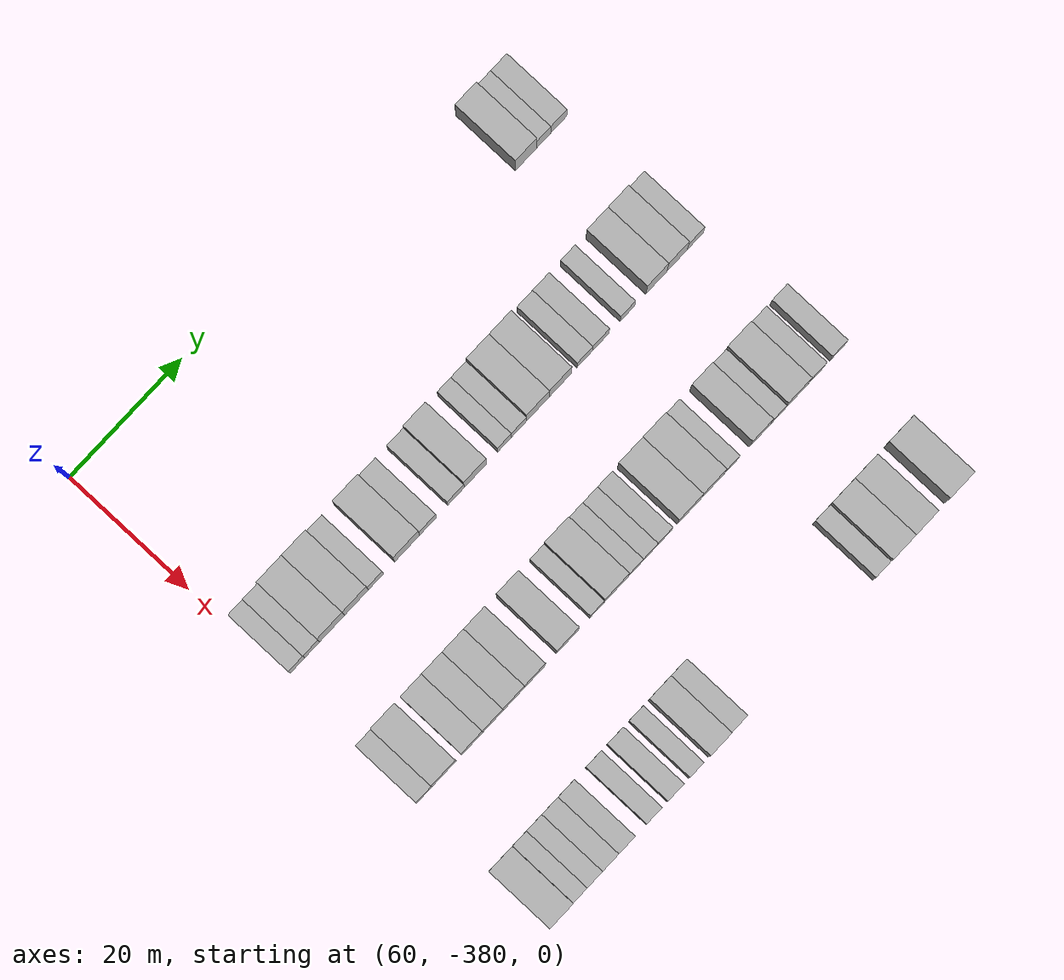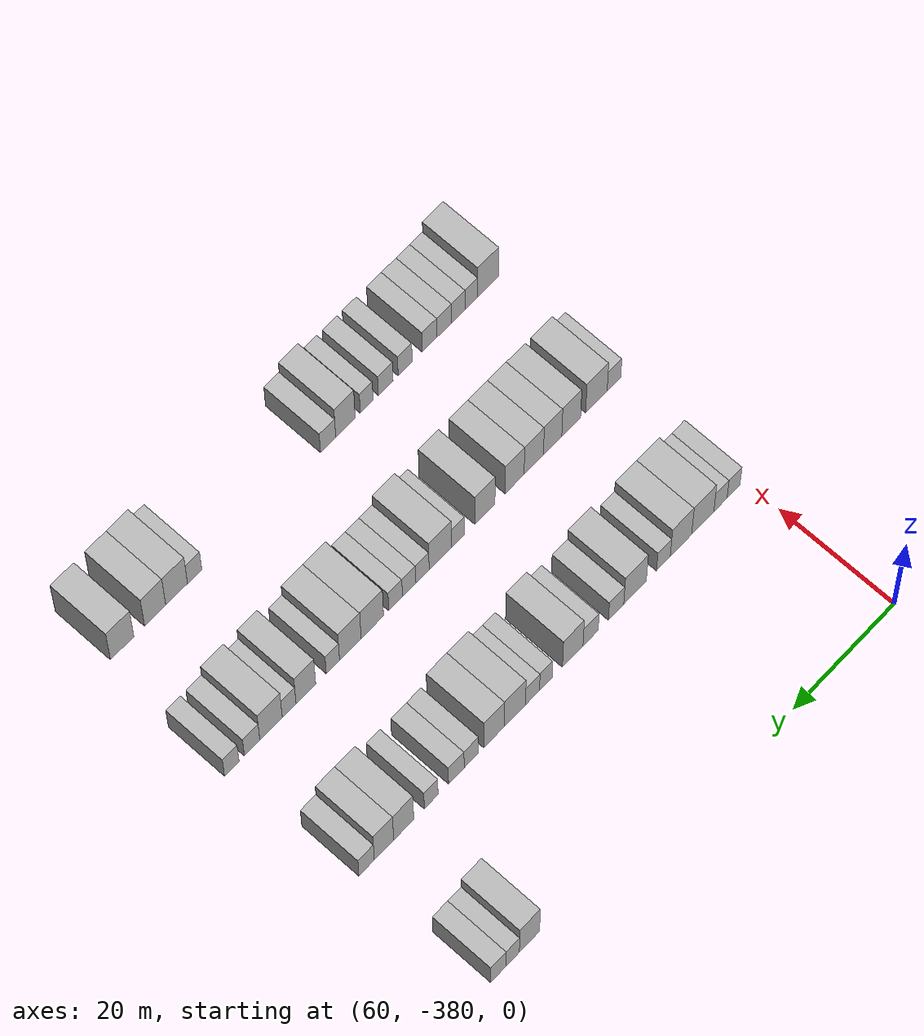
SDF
<sdf version="1.6">
 <world name="default">
  <model name="building_392">
   <static>1</static>
   <pose>69.0000 -313.5269 0 0.000000 0.000000 0.000000</pose>
   <link name="link">
    <pose>0 0 4.50 0 0 0</pose>
    <collision name="collision"><geometry><box><size>10.0000 3.8138 9.0000</size></box></geometry></collision>
    <visual name="visual">
     <cast_shadows>0</cast_shadows>
     <geometry><box><size>10.0000 3.8138 9.0000</size></box></geometry>
     <material>
      <script>
       <uri>model://HANNAS_wall/materials/scripts</uri>
       <uri>model://HANNAS_wall/materials/textures</uri>
       <name>vrc/HANNAS_wall</name>
      </script>
     </material>
    </visual>
   </link>
  </model>
  <model name="building_393">
   <static>1</static>
   <pose>69.0000 -310.3730 0 0.000000 0.000000 0.000000</pose>
   <link name="link">
    <pose>0 0 3.00 0 0 0</pose>
    <collision name="collision"><geometry><box><size>10.0000 2.4939 6.0000</size></box></geometry></collision>
    <visual name="visual">
     <cast_shadows>0</cast_shadows>
     <geometry><box><size>10.0000 2.4939 6.0000</size></box></geometry>
     <material>
      <script>
       <uri>model://HANNAS_wall/materials/scripts</uri>
       <uri>model://HANNAS_wall/materials/textures</uri>
       <name>vrc/HANNAS_wall</name>
      </script>
     </material>
    </visual>
   </link>
  </model>
  <model name="building_394">
   <static>1</static>
   <pose>69.0000 -307.6803 0 0.000000 0.000000 0.000000</pose>
   <link name="link">
    <pose>0 0 3.00 0 0 0</pose>
    <collision name="collision"><geometry><box><size>10.0000 2.8915 6.0000</size></box></geometry></collision>
    <visual name="visual">
     <cast_shadows>0</cast_shadows>
     <geometry><box><size>10.0000 2.8915 6.0000</size></box></geometry>
     <material>
      <script>
       <uri>model://HANNAS_wall/materials/scripts</uri>
       <uri>model://HANNAS_wall/materials/textures</uri>
       <name>vrc/HANNAS_wall</name>
      </script>
     </material>
    </visual>
   </link>
  </model>
  <model name="building_568">
   <static>1</static>
   <pose>91.0000 -377.7199 0 0.000000 0.000000 0.000000</pose>
   <link name="link">
    <pose>0 0 3.00 0 0 0</pose>
    <collision name="collision"><geometry><box><size>10.0000 2.5602 6.0000</size></box></geometry></collision>
    <visual name="visual">
     <cast_shadows>0</cast_shadows>
     <geometry><box><size>10.0000 2.5602 6.0000</size></box></geometry>
     <material>
      <script>
       <uri>model://HANNAS_wall/materials/scripts</uri>
       <uri>model://HANNAS_wall/materials/textures</uri>
       <name>vrc/HANNAS_wall</name>
      </script>
     </material>
    </visual>
   </link>
  </model>
  <model name="building_569">
   <static>1</static>
   <pose>91.0000 -375.1196 0 0.000000 0.000000 0.000000</pose>
   <link name="link">
    <pose>0 0 3.00 0 0 0</pose>
    <collision name="collision"><geometry><box><size>10.0000 2.6404 6.0000</size></box></geometry></collision>
    <visual name="visual">
     <cast_shadows>0</cast_shadows>
     <geometry><box><size>10.0000 2.6404 6.0000</size></box></geometry>
     <material>
      <script>
       <uri>model://HANNAS_wall/materials/scripts</uri>
       <uri>model://HANNAS_wall/materials/textures</uri>
       <name>vrc/HANNAS_wall</name>
      </script>
     </material>
    </visual>
   </link>
  </model>
  <model name="building_570">
   <static>1</static>
   <pose>91.0000 -371.5934 0 0.000000 0.000000 0.000000</pose>
   <link name="link">
    <pose>0 0 4.50 0 0 0</pose>
    <collision name="collision"><geometry><box><size>10.0000 4.4121 9.0000</size></box></geometry></collision>
    <visual name="visual">
     <cast_shadows>0</cast_shadows>
     <geometry><box><size>10.0000 4.4121 9.0000</size></box></geometry>
     <material>
      <script>
       <uri>model://HANNAS_wall/materials/scripts</uri>
       <uri>model://HANNAS_wall/materials/textures</uri>
       <name>vrc/HANNAS_wall</name>
      </script>
     </material>
    </visual>
   </link>
  </model>
  <model name="building_571">
   <static>1</static>
   <pose>91.0000 -367.2801 0 0.000000 0.000000 0.000000</pose>
   <link name="link">
    <pose>0 0 4.50 0 0 0</pose>
    <collision name="collision"><geometry><box><size>10.0000 4.2145 9.0000</size></box></geometry></collision>
    <visual name="visual">
     <cast_shadows>0</cast_shadows>
     <geometry><box><size>10.0000 4.2145 9.0000</size></box></geometry>
     <material>
      <script>
       <uri>model://HANNAS_wall/materials/scripts</uri>
       <uri>model://HANNAS_wall/materials/textures</uri>
       <name>vrc/HANNAS_wall</name>
      </script>
     </material>
    </visual>
   </link>
  </model>
  <model name="building_572">
   <static>1</static>
   <pose>91.0000 -363.8207 0 0.000000 0.000000 0.000000</pose>
   <link name="link">
    <pose>0 0 3.00 0 0 0</pose>
    <collision name="collision"><geometry><box><size>10.0000 2.7043 6.0000</size></box></geometry></collision>
    <visual name="visual">
     <cast_shadows>0</cast_shadows>
     <geometry><box><size>10.0000 2.7043 6.0000</size></box></geometry>
     <material>
      <script>
       <uri>model://HANNAS_wall/materials/scripts</uri>
       <uri>model://HANNAS_wall/materials/textures</uri>
       <name>vrc/HANNAS_wall</name>
      </script>
     </material>
    </visual>
   </link>
  </model>
  <model name="building_573">
   <static>1</static>
   <pose>91.0000 -358.2514 0 0.000000 0.000000 0.000000</pose>
   <link name="link">
    <pose>0 0 4.50 0 0 0</pose>
    <collision name="collision"><geometry><box><size>10.0000 4.4343 9.0000</size></box></geometry></collision>
    <visual name="visual">
     <cast_shadows>0</cast_shadows>
     <geometry><box><size>10.0000 4.4343 9.0000</size></box></geometry>
     <material>
      <script>
       <uri>model://HANNAS_wall/materials/scripts</uri>
       <uri>model://HANNAS_wall/materials/textures</uri>
       <name>vrc/HANNAS_wall</name>
      </script>
     </material>
    </visual>
   </link>
  </model>
  <model name="building_574">
   <static>1</static>
   <pose>91.0000 -354.5365 0 0.000000 0.000000 0.000000</pose>
   <link name="link">
    <pose>0 0 3.00 0 0 0</pose>
    <collision name="collision"><geometry><box><size>10.0000 2.9956 6.0000</size></box></geometry></collision>
    <visual name="visual">
     <cast_shadows>0</cast_shadows>
     <geometry><box><size>10.0000 2.9956 6.0000</size></box></geometry>
     <material>
      <script>
       <uri>model://HANNAS_wall/materials/scripts</uri>
       <uri>model://HANNAS_wall/materials/textures</uri>
       <name>vrc/HANNAS_wall</name>
      </script>
     </material>
    </visual>
   </link>
  </model>
  <model name="building_575">
   <static>1</static>
   <pose>91.0000 -349.5634 0 0.000000 0.000000 0.000000</pose>
   <link name="link">
    <pose>0 0 3.00 0 0 0</pose>
    <collision name="collision"><geometry><box><size>10.0000 2.9506 6.0000</size></box></geometry></collision>
    <visual name="visual">
     <cast_shadows>0</cast_shadows>
     <geometry><box><size>10.0000 2.9506 6.0000</size></box></geometry>
     <material>
      <script>
       <uri>model://HANNAS_wall/materials/scripts</uri>
       <uri>model://HANNAS_wall/materials/textures</uri>
       <name>vrc/HANNAS_wall</name>
      </script>
     </material>
    </visual>
   </link>
  </model>
  <model name="building_576">
   <static>1</static>
   <pose>91.0000 -346.0995 0 0.000000 0.000000 0.000000</pose>
   <link name="link">
    <pose>0 0 4.50 0 0 0</pose>
    <collision name="collision"><geometry><box><size>10.0000 3.9772 9.0000</size></box></geometry></collision>
    <visual name="visual">
     <cast_shadows>0</cast_shadows>
     <geometry><box><size>10.0000 3.9772 9.0000</size></box></geometry>
     <material>
      <script>
       <uri>model://HANNAS_wall/materials/scripts</uri>
       <uri>model://HANNAS_wall/materials/textures</uri>
       <name>vrc/HANNAS_wall</name>
      </script>
     </material>
    </visual>
   </link>
  </model>
  <model name="building_577">
   <static>1</static>
   <pose>91.0000 -340.8945 0 0.000000 0.000000 0.000000</pose>
   <link name="link">
    <pose>0 0 3.00 0 0 0</pose>
    <collision name="collision"><geometry><box><size>10.0000 2.4328 6.0000</size></box></geometry></collision>
    <visual name="visual">
     <cast_shadows>0</cast_shadows>
     <geometry><box><size>10.0000 2.4328 6.0000</size></box></geometry>
     <material>
      <script>
       <uri>model://HANNAS_wall/materials/scripts</uri>
       <uri>model://HANNAS_wall/materials/textures</uri>
       <name>vrc/HANNAS_wall</name>
      </script>
     </material>
    </visual>
   </link>
  </model>
  <model name="building_578">
   <static>1</static>
   <pose>91.0000 -338.3285 0 0.000000 0.000000 0.000000</pose>
   <link name="link">
    <pose>0 0 3.00 0 0 0</pose>
    <collision name="collision"><geometry><box><size>10.0000 2.6993 6.0000</size></box></geometry></collision>
    <visual name="visual">
     <cast_shadows>0</cast_shadows>
     <geometry><box><size>10.0000 2.6993 6.0000</size></box></geometry>
     <material>
      <script>
       <uri>model://HANNAS_wall/materials/scripts</uri>
       <uri>model://HANNAS_wall/materials/textures</uri>
       <name>vrc/HANNAS_wall</name>
      </script>
     </material>
    </visual>
   </link>
  </model>
  <model name="building_579">
   <static>1</static>
   <pose>91.0000 -334.9475 0 0.000000 0.000000 0.000000</pose>
   <link name="link">
    <pose>0 0 4.50 0 0 0</pose>
    <collision name="collision"><geometry><box><size>10.0000 4.0627 9.0000</size></box></geometry></collision>
    <visual name="visual">
     <cast_shadows>0</cast_shadows>
     <geometry><box><size>10.0000 4.0627 9.0000</size></box></geometry>
     <material>
      <script>
       <uri>model://HANNAS_wall/materials/scripts</uri>
       <uri>model://HANNAS_wall/materials/textures</uri>
       <name>vrc/HANNAS_wall</name>
      </script>
     </material>
    </visual>
   </link>
  </model>
  <model name="building_580">
   <static>1</static>
   <pose>91.0000 -330.9551 0 0.000000 0.000000 0.000000</pose>
   <link name="link">
    <pose>0 0 4.50 0 0 0</pose>
    <collision name="collision"><geometry><box><size>10.0000 3.9221 9.0000</size></box></geometry></collision>
    <visual name="visual">
     <cast_shadows>0</cast_shadows>
     <geometry><box><size>10.0000 3.9221 9.0000</size></box></geometry>
     <material>
      <script>
       <uri>model://HANNAS_wall/materials/scripts</uri>
       <uri>model://HANNAS_wall/materials/textures</uri>
       <name>vrc/HANNAS_wall</name>
      </script>
     </material>
    </visual>
   </link>
  </model>
  <model name="building_581">
   <static>1</static>
   <pose>91.0000 -326.6038 0 0.000000 0.000000 0.000000</pose>
   <link name="link">
    <pose>0 0 3.00 0 0 0</pose>
    <collision name="collision"><geometry><box><size>10.0000 2.7804 6.0000</size></box></geometry></collision>
    <visual name="visual">
     <cast_shadows>0</cast_shadows>
     <geometry><box><size>10.0000 2.7804 6.0000</size></box></geometry>
     <material>
      <script>
       <uri>model://HANNAS_wall/materials/scripts</uri>
       <uri>model://HANNAS_wall/materials/textures</uri>
       <name>vrc/HANNAS_wall</name>
      </script>
     </material>
    </visual>
   </link>
  </model>
  <model name="building_582">
   <static>1</static>
   <pose>91.0000 -323.7377 0 0.000000 0.000000 0.000000</pose>
   <link name="link">
    <pose>0 0 3.00 0 0 0</pose>
    <collision name="collision"><geometry><box><size>10.0000 2.9519 6.0000</size></box></geometry></collision>
    <visual name="visual">
     <cast_shadows>0</cast_shadows>
     <geometry><box><size>10.0000 2.9519 6.0000</size></box></geometry>
     <material>
      <script>
       <uri>model://HANNAS_wall/materials/scripts</uri>
       <uri>model://HANNAS_wall/materials/textures</uri>
       <name>vrc/HANNAS_wall</name>
      </script>
     </material>
    </visual>
   </link>
  </model>
  <model name="building_583">
   <static>1</static>
   <pose>91.0000 -318.9603 0 0.000000 0.000000 0.000000</pose>
   <link name="link">
    <pose>0 0 3.00 0 0 0</pose>
    <collision name="collision"><geometry><box><size>10.0000 2.6030 6.0000</size></box></geometry></collision>
    <visual name="visual">
     <cast_shadows>0</cast_shadows>
     <geometry><box><size>10.0000 2.6030 6.0000</size></box></geometry>
     <material>
      <script>
       <uri>model://HANNAS_wall/materials/scripts</uri>
       <uri>model://HANNAS_wall/materials/textures</uri>
       <name>vrc/HANNAS_wall</name>
      </script>
     </material>
    </visual>
   </link>
  </model>
  <model name="building_584">
   <static>1</static>
   <pose>91.0000 -313.7648 0 0.000000 0.000000 0.000000</pose>
   <link name="link">
    <pose>0 0 4.50 0 0 0</pose>
    <collision name="collision"><geometry><box><size>10.0000 3.7881 9.0000</size></box></geometry></collision>
    <visual name="visual">
     <cast_shadows>0</cast_shadows>
     <geometry><box><size>10.0000 3.7881 9.0000</size></box></geometry>
     <material>
      <script>
       <uri>model://HANNAS_wall/materials/scripts</uri>
       <uri>model://HANNAS_wall/materials/textures</uri>
       <name>vrc/HANNAS_wall</name>
      </script>
     </material>
    </visual>
   </link>
  </model>
  <model name="building_585">
   <static>1</static>
   <pose>91.0000 -310.0565 0 0.000000 0.000000 0.000000</pose>
   <link name="link">
    <pose>0 0 4.50 0 0 0</pose>
    <collision name="collision"><geometry><box><size>10.0000 3.6285 9.0000</size></box></geometry></collision>
    <visual name="visual">
     <cast_shadows>0</cast_shadows>
     <geometry><box><size>10.0000 3.6285 9.0000</size></box></geometry>
     <material>
      <script>
       <uri>model://HANNAS_wall/materials/scripts</uri>
       <uri>model://HANNAS_wall/materials/textures</uri>
       <name>vrc/HANNAS_wall</name>
      </script>
     </material>
    </visual>
   </link>
  </model>
  <model name="building_586">
   <static>1</static>
   <pose>91.0000 -306.7960 0 0.000000 0.000000 0.000000</pose>
   <link name="link">
    <pose>0 0 3.00 0 0 0</pose>
    <collision name="collision"><geometry><box><size>10.0000 2.8925 6.0000</size></box></geometry></collision>
    <visual name="visual">
     <cast_shadows>0</cast_shadows>
     <geometry><box><size>10.0000 2.8925 6.0000</size></box></geometry>
     <material>
      <script>
       <uri>model://HANNAS_wall/materials/scripts</uri>
       <uri>model://HANNAS_wall/materials/textures</uri>
       <name>vrc/HANNAS_wall</name>
      </script>
     </material>
    </visual>
   </link>
  </model>
  <model name="building_755">
   <static>1</static>
   <pose>113.0000 -378.6455 0 0.000000 0.000000 0.000000</pose>
   <link name="link">
    <pose>0 0 3.00 0 0 0</pose>
    <collision name="collision"><geometry><box><size>10.0000 2.7090 6.0000</size></box></geometry></collision>
    <visual name="visual">
     <cast_shadows>0</cast_shadows>
     <geometry><box><size>10.0000 2.7090 6.0000</size></box></geometry>
     <material>
      <script>
       <uri>model://HANNAS_wall/materials/scripts</uri>
       <uri>model://HANNAS_wall/materials/textures</uri>
       <name>vrc/HANNAS_wall</name>
      </script>
     </material>
    </visual>
   </link>
  </model>
  <model name="building_756">
   <static>1</static>
   <pose>113.0000 -375.1578 0 0.000000 0.000000 0.000000</pose>
   <link name="link">
    <pose>0 0 4.50 0 0 0</pose>
    <collision name="collision"><geometry><box><size>10.0000 4.2665 9.0000</size></box></geometry></collision>
    <visual name="visual">
     <cast_shadows>0</cast_shadows>
     <geometry><box><size>10.0000 4.2665 9.0000</size></box></geometry>
     <material>
      <script>
       <uri>model://HANNAS_wall/materials/scripts</uri>
       <uri>model://HANNAS_wall/materials/textures</uri>
       <name>vrc/HANNAS_wall</name>
      </script>
     </material>
    </visual>
   </link>
  </model>
  <model name="building_757">
   <static>1</static>
   <pose>113.0000 -370.1663 0 0.000000 0.000000 0.000000</pose>
   <link name="link">
    <pose>0 0 4.50 0 0 0</pose>
    <collision name="collision"><geometry><box><size>10.0000 3.7163 9.0000</size></box></geometry></collision>
    <visual name="visual">
     <cast_shadows>0</cast_shadows>
     <geometry><box><size>10.0000 3.7163 9.0000</size></box></geometry>
     <material>
      <script>
       <uri>model://HANNAS_wall/materials/scripts</uri>
       <uri>model://HANNAS_wall/materials/textures</uri>
       <name>vrc/HANNAS_wall</name>
      </script>
     </material>
    </visual>
   </link>
  </model>
  <model name="building_758">
   <static>1</static>
   <pose>113.0000 -366.5022 0 0.000000 0.000000 0.000000</pose>
   <link name="link">
    <pose>0 0 4.50 0 0 0</pose>
    <collision name="collision"><geometry><box><size>10.0000 3.6119 9.0000</size></box></geometry></collision>
    <visual name="visual">
     <cast_shadows>0</cast_shadows>
     <geometry><box><size>10.0000 3.6119 9.0000</size></box></geometry>
     <material>
      <script>
       <uri>model://HANNAS_wall/materials/scripts</uri>
       <uri>model://HANNAS_wall/materials/textures</uri>
       <name>vrc/HANNAS_wall</name>
      </script>
     </material>
    </visual>
   </link>
  </model>
  <model name="building_759">
   <static>1</static>
   <pose>113.0000 -362.7983 0 0.000000 0.000000 0.000000</pose>
   <link name="link">
    <pose>0 0 4.50 0 0 0</pose>
    <collision name="collision"><geometry><box><size>10.0000 3.7959 9.0000</size></box></geometry></collision>
    <visual name="visual">
     <cast_shadows>0</cast_shadows>
     <geometry><box><size>10.0000 3.7959 9.0000</size></box></geometry>
     <material>
      <script>
       <uri>model://HANNAS_wall/materials/scripts</uri>
       <uri>model://HANNAS_wall/materials/textures</uri>
       <name>vrc/HANNAS_wall</name>
      </script>
     </material>
    </visual>
   </link>
  </model>
  <model name="building_760">
   <static>1</static>
   <pose>113.0000 -359.0449 0 0.000000 0.000000 0.000000</pose>
   <link name="link">
    <pose>0 0 4.50 0 0 0</pose>
    <collision name="collision"><geometry><box><size>10.0000 3.7109 9.0000</size></box></geometry></collision>
    <visual name="visual">
     <cast_shadows>0</cast_shadows>
     <geometry><box><size>10.0000 3.7109 9.0000</size></box></geometry>
     <material>
      <script>
       <uri>model://HANNAS_wall/materials/scripts</uri>
       <uri>model://HANNAS_wall/materials/textures</uri>
       <name>vrc/HANNAS_wall</name>
      </script>
     </material>
    </visual>
   </link>
  </model>
  <model name="building_761">
   <static>1</static>
   <pose>113.0000 -353.2288 0 0.000000 0.000000 0.000000</pose>
   <link name="link">
    <pose>0 0 4.50 0 0 0</pose>
    <collision name="collision"><geometry><box><size>10.0000 3.9214 9.0000</size></box></geometry></collision>
    <visual name="visual">
     <cast_shadows>0</cast_shadows>
     <geometry><box><size>10.0000 3.9214 9.0000</size></box></geometry>
     <material>
      <script>
       <uri>model://HANNAS_wall/materials/scripts</uri>
       <uri>model://HANNAS_wall/materials/textures</uri>
       <name>vrc/HANNAS_wall</name>
      </script>
     </material>
    </visual>
   </link>
  </model>
  <model name="building_762">
   <static>1</static>
   <pose>113.0000 -348.0009 0 0.000000 0.000000 0.000000</pose>
   <link name="link">
    <pose>0 0 3.00 0 0 0</pose>
    <collision name="collision"><geometry><box><size>10.0000 2.5344 6.0000</size></box></geometry></collision>
    <visual name="visual">
     <cast_shadows>0</cast_shadows>
     <geometry><box><size>10.0000 2.5344 6.0000</size></box></geometry>
     <material>
      <script>
       <uri>model://HANNAS_wall/materials/scripts</uri>
       <uri>model://HANNAS_wall/materials/textures</uri>
       <name>vrc/HANNAS_wall</name>
      </script>
     </material>
    </visual>
   </link>
  </model>
  <model name="building_763">
   <static>1</static>
   <pose>113.0000 -344.5751 0 0.000000 0.000000 0.000000</pose>
   <link name="link">
    <pose>0 0 4.50 0 0 0</pose>
    <collision name="collision"><geometry><box><size>10.0000 4.3171 9.0000</size></box></geometry></collision>
    <visual name="visual">
     <cast_shadows>0</cast_shadows>
     <geometry><box><size>10.0000 4.3171 9.0000</size></box></geometry>
     <material>
      <script>
       <uri>model://HANNAS_wall/materials/scripts</uri>
       <uri>model://HANNAS_wall/materials/textures</uri>
       <name>vrc/HANNAS_wall</name>
      </script>
     </material>
    </visual>
   </link>
  </model>
  <model name="building_764">
   <static>1</static>
   <pose>113.0000 -341.1428 0 0.000000 0.000000 0.000000</pose>
   <link name="link">
    <pose>0 0 3.00 0 0 0</pose>
    <collision name="collision"><geometry><box><size>10.0000 2.5475 6.0000</size></box></geometry></collision>
    <visual name="visual">
     <cast_shadows>0</cast_shadows>
     <geometry><box><size>10.0000 2.5475 6.0000</size></box></geometry>
     <material>
      <script>
       <uri>model://HANNAS_wall/materials/scripts</uri>
       <uri>model://HANNAS_wall/materials/textures</uri>
       <name>vrc/HANNAS_wall</name>
      </script>
     </material>
    </visual>
   </link>
  </model>
  <model name="building_765">
   <static>1</static>
   <pose>113.0000 -338.5694 0 0.000000 0.000000 0.000000</pose>
   <link name="link">
    <pose>0 0 3.00 0 0 0</pose>
    <collision name="collision"><geometry><box><size>10.0000 2.5994 6.0000</size></box></geometry></collision>
    <visual name="visual">
     <cast_shadows>0</cast_shadows>
     <geometry><box><size>10.0000 2.5994 6.0000</size></box></geometry>
     <material>
      <script>
       <uri>model://HANNAS_wall/materials/scripts</uri>
       <uri>model://HANNAS_wall/materials/textures</uri>
       <name>vrc/HANNAS_wall</name>
      </script>
     </material>
    </visual>
   </link>
  </model>
  <model name="building_766">
   <static>1</static>
   <pose>113.0000 -335.9576 0 0.000000 0.000000 0.000000</pose>
   <link name="link">
    <pose>0 0 3.00 0 0 0</pose>
    <collision name="collision"><geometry><box><size>10.0000 2.6242 6.0000</size></box></geometry></collision>
    <visual name="visual">
     <cast_shadows>0</cast_shadows>
     <geometry><box><size>10.0000 2.6242 6.0000</size></box></geometry>
     <material>
      <script>
       <uri>model://HANNAS_wall/materials/scripts</uri>
       <uri>model://HANNAS_wall/materials/textures</uri>
       <name>vrc/HANNAS_wall</name>
      </script>
     </material>
    </visual>
   </link>
  </model>
  <model name="building_767">
   <static>1</static>
   <pose>113.0000 -331.5012 0 0.000000 0.000000 0.000000</pose>
   <link name="link">
    <pose>0 0 4.50 0 0 0</pose>
    <collision name="collision"><geometry><box><size>10.0000 4.2886 9.0000</size></box></geometry></collision>
    <visual name="visual">
     <cast_shadows>0</cast_shadows>
     <geometry><box><size>10.0000 4.2886 9.0000</size></box></geometry>
     <material>
      <script>
       <uri>model://HANNAS_wall/materials/scripts</uri>
       <uri>model://HANNAS_wall/materials/textures</uri>
       <name>vrc/HANNAS_wall</name>
      </script>
     </material>
    </visual>
   </link>
  </model>
  <model name="building_768">
   <static>1</static>
   <pose>113.0000 -327.3059 0 0.000000 0.000000 0.000000</pose>
   <link name="link">
    <pose>0 0 4.50 0 0 0</pose>
    <collision name="collision"><geometry><box><size>10.0000 4.1019 9.0000</size></box></geometry></collision>
    <visual name="visual">
     <cast_shadows>0</cast_shadows>
     <geometry><box><size>10.0000 4.1019 9.0000</size></box></geometry>
     <material>
      <script>
       <uri>model://HANNAS_wall/materials/scripts</uri>
       <uri>model://HANNAS_wall/materials/textures</uri>
       <name>vrc/HANNAS_wall</name>
      </script>
     </material>
    </visual>
   </link>
  </model>
  <model name="building_769">
   <static>1</static>
   <pose>113.0000 -323.9925 0 0.000000 0.000000 0.000000</pose>
   <link name="link">
    <pose>0 0 3.00 0 0 0</pose>
    <collision name="collision"><geometry><box><size>10.0000 2.5250 6.0000</size></box></geometry></collision>
    <visual name="visual">
     <cast_shadows>0</cast_shadows>
     <geometry><box><size>10.0000 2.5250 6.0000</size></box></geometry>
     <material>
      <script>
       <uri>model://HANNAS_wall/materials/scripts</uri>
       <uri>model://HANNAS_wall/materials/textures</uri>
       <name>vrc/HANNAS_wall</name>
      </script>
     </material>
    </visual>
   </link>
  </model>
  <model name="building_770">
   <static>1</static>
   <pose>113.0000 -318.8725 0 0.000000 0.000000 0.000000</pose>
   <link name="link">
    <pose>0 0 4.50 0 0 0</pose>
    <collision name="collision"><geometry><box><size>10.0000 3.7149 9.0000</size></box></geometry></collision>
    <visual name="visual">
     <cast_shadows>0</cast_shadows>
     <geometry><box><size>10.0000 3.7149 9.0000</size></box></geometry>
     <material>
      <script>
       <uri>model://HANNAS_wall/materials/scripts</uri>
       <uri>model://HANNAS_wall/materials/textures</uri>
       <name>vrc/HANNAS_wall</name>
      </script>
     </material>
    </visual>
   </link>
  </model>
  <model name="building_771">
   <static>1</static>
   <pose>113.0000 -315.7144 0 0.000000 0.000000 0.000000</pose>
   <link name="link">
    <pose>0 0 3.00 0 0 0</pose>
    <collision name="collision"><geometry><box><size>10.0000 2.6014 6.0000</size></box></geometry></collision>
    <visual name="visual">
     <cast_shadows>0</cast_shadows>
     <geometry><box><size>10.0000 2.6014 6.0000</size></box></geometry>
     <material>
      <script>
       <uri>model://HANNAS_wall/materials/scripts</uri>
       <uri>model://HANNAS_wall/materials/textures</uri>
       <name>vrc/HANNAS_wall</name>
      </script>
     </material>
    </visual>
   </link>
  </model>
  <model name="building_772">
   <static>1</static>
   <pose>113.0000 -312.3067 0 0.000000 0.000000 0.000000</pose>
   <link name="link">
    <pose>0 0 4.50 0 0 0</pose>
    <collision name="collision"><geometry><box><size>10.0000 4.2141 9.0000</size></box></geometry></collision>
    <visual name="visual">
     <cast_shadows>0</cast_shadows>
     <geometry><box><size>10.0000 4.2141 9.0000</size></box></geometry>
     <material>
      <script>
       <uri>model://HANNAS_wall/materials/scripts</uri>
       <uri>model://HANNAS_wall/materials/textures</uri>
       <name>vrc/HANNAS_wall</name>
      </script>
     </material>
    </visual>
   </link>
  </model>
  <model name="building_773">
   <static>1</static>
   <pose>113.0000 -308.7481 0 0.000000 0.000000 0.000000</pose>
   <link name="link">
    <pose>0 0 3.00 0 0 0</pose>
    <collision name="collision"><geometry><box><size>10.0000 2.9031 6.0000</size></box></geometry></collision>
    <visual name="visual">
     <cast_shadows>0</cast_shadows>
     <geometry><box><size>10.0000 2.9031 6.0000</size></box></geometry>
     <material>
      <script>
       <uri>model://HANNAS_wall/materials/scripts</uri>
       <uri>model://HANNAS_wall/materials/textures</uri>
       <name>vrc/HANNAS_wall</name>
      </script>
     </material>
    </visual>
   </link>
  </model>
  <model name="building_774">
   <static>1</static>
   <pose>113.0000 -304.9344 0 0.000000 0.000000 0.000000</pose>
   <link name="link">
    <pose>0 0 3.00 0 0 0</pose>
    <collision name="collision"><geometry><box><size>10.0000 2.7243 6.0000</size></box></geometry></collision>
    <visual name="visual">
     <cast_shadows>0</cast_shadows>
     <geometry><box><size>10.0000 2.7243 6.0000</size></box></geometry>
     <material>
      <script>
       <uri>model://HANNAS_wall/materials/scripts</uri>
       <uri>model://HANNAS_wall/materials/textures</uri>
       <name>vrc/HANNAS_wall</name>
      </script>
     </material>
    </visual>
   </link>
  </model>
  <model name="building_932">
   <static>1</static>
   <pose>135.0000 -377.9365 0 0.000000 0.000000 0.000000</pose>
   <link name="link">
    <pose>0 0 4.50 0 0 0</pose>
    <collision name="collision"><geometry><box><size>10.0000 4.1269 9.0000</size></box></geometry></collision>
    <visual name="visual">
     <cast_shadows>0</cast_shadows>
     <geometry><box><size>10.0000 4.1269 9.0000</size></box></geometry>
     <material>
      <script>
       <uri>model://HANNAS_wall/materials/scripts</uri>
       <uri>model://HANNAS_wall/materials/textures</uri>
       <name>vrc/HANNAS_wall</name>
      </script>
     </material>
    </visual>
   </link>
  </model>
  <model name="building_933">
   <static>1</static>
   <pose>135.0000 -374.6294 0 0.000000 0.000000 0.000000</pose>
   <link name="link">
    <pose>0 0 3.00 0 0 0</pose>
    <collision name="collision"><geometry><box><size>10.0000 2.4874 6.0000</size></box></geometry></collision>
    <visual name="visual">
     <cast_shadows>0</cast_shadows>
     <geometry><box><size>10.0000 2.4874 6.0000</size></box></geometry>
     <material>
      <script>
       <uri>model://HANNAS_wall/materials/scripts</uri>
       <uri>model://HANNAS_wall/materials/textures</uri>
       <name>vrc/HANNAS_wall</name>
      </script>
     </material>
    </visual>
   </link>
  </model>
  <model name="building_934">
   <static>1</static>
   <pose>135.0000 -372.0374 0 0.000000 0.000000 0.000000</pose>
   <link name="link">
    <pose>0 0 3.00 0 0 0</pose>
    <collision name="collision"><geometry><box><size>10.0000 2.6967 6.0000</size></box></geometry></collision>
    <visual name="visual">
     <cast_shadows>0</cast_shadows>
     <geometry><box><size>10.0000 2.6967 6.0000</size></box></geometry>
     <material>
      <script>
       <uri>model://HANNAS_wall/materials/scripts</uri>
       <uri>model://HANNAS_wall/materials/textures</uri>
       <name>vrc/HANNAS_wall</name>
      </script>
     </material>
    </visual>
   </link>
  </model>
  <model name="building_935">
   <static>1</static>
   <pose>135.0000 -369.2540 0 0.000000 0.000000 0.000000</pose>
   <link name="link">
    <pose>0 0 3.00 0 0 0</pose>
    <collision name="collision"><geometry><box><size>10.0000 2.8701 6.0000</size></box></geometry></collision>
    <visual name="visual">
     <cast_shadows>0</cast_shadows>
     <geometry><box><size>10.0000 2.8701 6.0000</size></box></geometry>
     <material>
      <script>
       <uri>model://HANNAS_wall/materials/scripts</uri>
       <uri>model://HANNAS_wall/materials/textures</uri>
       <name>vrc/HANNAS_wall</name>
      </script>
     </material>
    </visual>
   </link>
  </model>
  <model name="building_936">
   <static>1</static>
   <pose>135.0000 -366.3694 0 0.000000 0.000000 0.000000</pose>
   <link name="link">
    <pose>0 0 3.00 0 0 0</pose>
    <collision name="collision"><geometry><box><size>10.0000 2.8991 6.0000</size></box></geometry></collision>
    <visual name="visual">
     <cast_shadows>0</cast_shadows>
     <geometry><box><size>10.0000 2.8991 6.0000</size></box></geometry>
     <material>
      <script>
       <uri>model://HANNAS_wall/materials/scripts</uri>
       <uri>model://HANNAS_wall/materials/textures</uri>
       <name>vrc/HANNAS_wall</name>
      </script>
     </material>
    </visual>
   </link>
  </model>
  <model name="building_937">
   <static>1</static>
   <pose>135.0000 -361.5490 0 0.000000 0.000000 0.000000</pose>
   <link name="link">
    <pose>0 0 3.00 0 0 0</pose>
    <collision name="collision"><geometry><box><size>10.0000 2.7417 6.0000</size></box></geometry></collision>
    <visual name="visual">
     <cast_shadows>0</cast_shadows>
     <geometry><box><size>10.0000 2.7417 6.0000</size></box></geometry>
     <material>
      <script>
       <uri>model://HANNAS_wall/materials/scripts</uri>
       <uri>model://HANNAS_wall/materials/textures</uri>
       <name>vrc/HANNAS_wall</name>
      </script>
     </material>
    </visual>
   </link>
  </model>
  <model name="building_938">
   <static>1</static>
   <pose>135.0000 -357.7359 0 0.000000 0.000000 0.000000</pose>
   <link name="link">
    <pose>0 0 3.00 0 0 0</pose>
    <collision name="collision"><geometry><box><size>10.0000 2.8846 6.0000</size></box></geometry></collision>
    <visual name="visual">
     <cast_shadows>0</cast_shadows>
     <geometry><box><size>10.0000 2.8846 6.0000</size></box></geometry>
     <material>
      <script>
       <uri>model://HANNAS_wall/materials/scripts</uri>
       <uri>model://HANNAS_wall/materials/textures</uri>
       <name>vrc/HANNAS_wall</name>
      </script>
     </material>
    </visual>
   </link>
  </model>
  <model name="building_939">
   <static>1</static>
   <pose>135.0000 -354.0431 0 0.000000 0.000000 0.000000</pose>
   <link name="link">
    <pose>0 0 3.00 0 0 0</pose>
    <collision name="collision"><geometry><box><size>10.0000 2.5010 6.0000</size></box></geometry></collision>
    <visual name="visual">
     <cast_shadows>0</cast_shadows>
     <geometry><box><size>10.0000 2.5010 6.0000</size></box></geometry>
     <material>
      <script>
       <uri>model://HANNAS_wall/materials/scripts</uri>
       <uri>model://HANNAS_wall/materials/textures</uri>
       <name>vrc/HANNAS_wall</name>
      </script>
     </material>
    </visual>
   </link>
  </model>
  <model name="building_940">
   <static>1</static>
   <pose>135.0000 -349.9041 0 0.000000 0.000000 0.000000</pose>
   <link name="link">
    <pose>0 0 4.50 0 0 0</pose>
    <collision name="collision"><geometry><box><size>10.0000 3.7770 9.0000</size></box></geometry></collision>
    <visual name="visual">
     <cast_shadows>0</cast_shadows>
     <geometry><box><size>10.0000 3.7770 9.0000</size></box></geometry>
     <material>
      <script>
       <uri>model://HANNAS_wall/materials/scripts</uri>
       <uri>model://HANNAS_wall/materials/textures</uri>
       <name>vrc/HANNAS_wall</name>
      </script>
     </material>
    </visual>
   </link>
  </model>
  <model name="building_941">
   <static>1</static>
   <pose>135.0000 -346.5451 0 0.000000 0.000000 0.000000</pose>
   <link name="link">
    <pose>0 0 3.00 0 0 0</pose>
    <collision name="collision"><geometry><box><size>10.0000 2.9410 6.0000</size></box></geometry></collision>
    <visual name="visual">
     <cast_shadows>0</cast_shadows>
     <geometry><box><size>10.0000 2.9410 6.0000</size></box></geometry>
     <material>
      <script>
       <uri>model://HANNAS_wall/materials/scripts</uri>
       <uri>model://HANNAS_wall/materials/textures</uri>
       <name>vrc/HANNAS_wall</name>
      </script>
     </material>
    </visual>
   </link>
  </model>
  <model name="building_942">
   <static>1</static>
   <pose>135.0000 -321.0133 0 0.000000 0.000000 0.000000</pose>
   <link name="link">
    <pose>0 0 3.00 0 0 0</pose>
    <collision name="collision"><geometry><box><size>10.0000 2.7076 6.0000</size></box></geometry></collision>
    <visual name="visual">
     <cast_shadows>0</cast_shadows>
     <geometry><box><size>10.0000 2.7076 6.0000</size></box></geometry>
     <material>
      <script>
       <uri>model://HANNAS_wall/materials/scripts</uri>
       <uri>model://HANNAS_wall/materials/textures</uri>
       <name>vrc/HANNAS_wall</name>
      </script>
     </material>
    </visual>
   </link>
  </model>
  <model name="building_943">
   <static>1</static>
   <pose>135.0000 -317.6087 0 0.000000 0.000000 0.000000</pose>
   <link name="link">
    <pose>0 0 4.50 0 0 0</pose>
    <collision name="collision"><geometry><box><size>10.0000 4.1015 9.0000</size></box></geometry></collision>
    <visual name="visual">
     <cast_shadows>0</cast_shadows>
     <geometry><box><size>10.0000 4.1015 9.0000</size></box></geometry>
     <material>
      <script>
       <uri>model://HANNAS_wall/materials/scripts</uri>
       <uri>model://HANNAS_wall/materials/textures</uri>
       <name>vrc/HANNAS_wall</name>
      </script>
     </material>
    </visual>
   </link>
  </model>
  <model name="building_944">
   <static>1</static>
   <pose>135.0000 -313.5633 0 0.000000 0.000000 0.000000</pose>
   <link name="link">
    <pose>0 0 4.50 0 0 0</pose>
    <collision name="collision"><geometry><box><size>10.0000 3.9893 9.0000</size></box></geometry></collision>
    <visual name="visual">
     <cast_shadows>0</cast_shadows>
     <geometry><box><size>10.0000 3.9893 9.0000</size></box></geometry>
     <material>
      <script>
       <uri>model://HANNAS_wall/materials/scripts</uri>
       <uri>model://HANNAS_wall/materials/textures</uri>
       <name>vrc/HANNAS_wall</name>
      </script>
     </material>
    </visual>
   </link>
  </model>
  <model name="building_945">
   <static>1</static>
   <pose>135.0000 -307.3779 0 0.000000 0.000000 0.000000</pose>
   <link name="link">
    <pose>0 0 4.50 0 0 0</pose>
    <collision name="collision"><geometry><box><size>10.0000 4.3814 9.0000</size></box></geometry></collision>
    <visual name="visual">
     <cast_shadows>0</cast_shadows>
     <geometry><box><size>10.0000 4.3814 9.0000</size></box></geometry>
     <material>
      <script>
       <uri>model://HANNAS_wall/materials/scripts</uri>
       <uri>model://HANNAS_wall/materials/textures</uri>
       <name>vrc/HANNAS_wall</name>
      </script>
     </material>
    </visual>
   </link>
  </model>
 </world>
</sdf>
